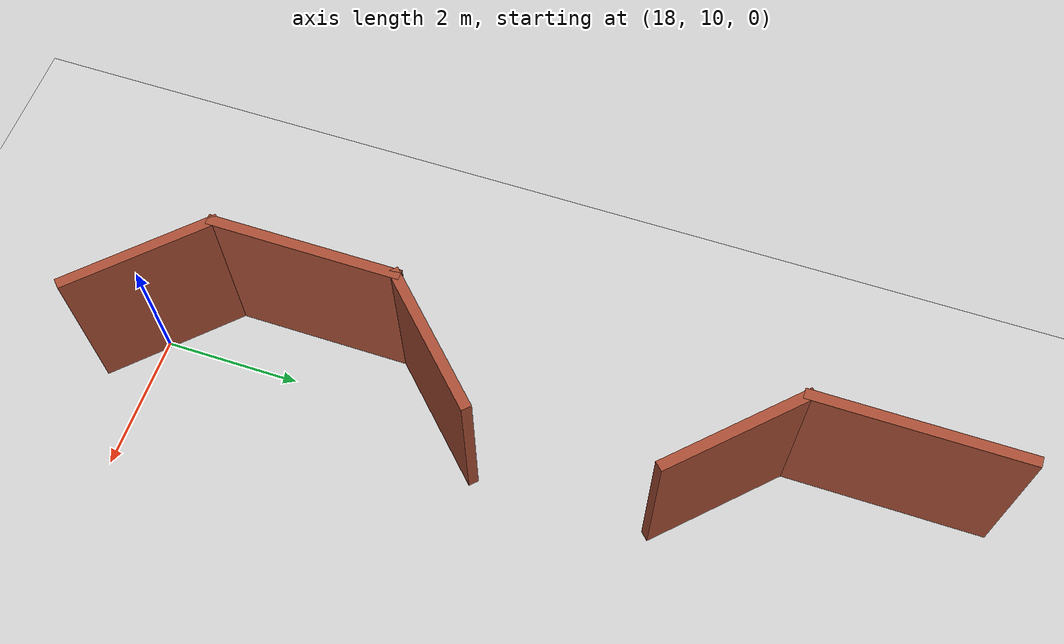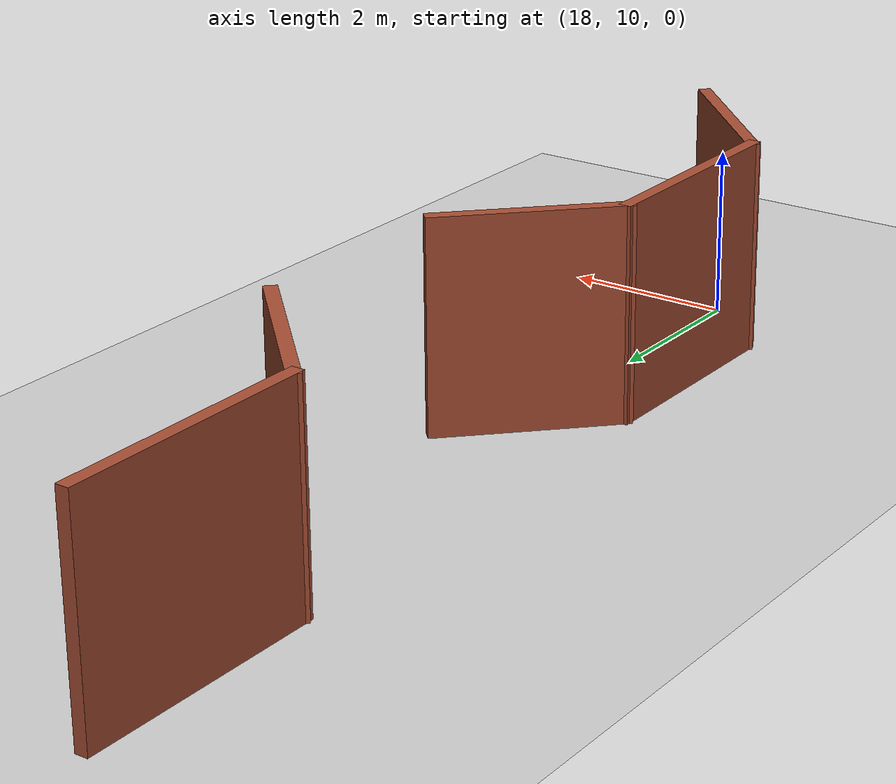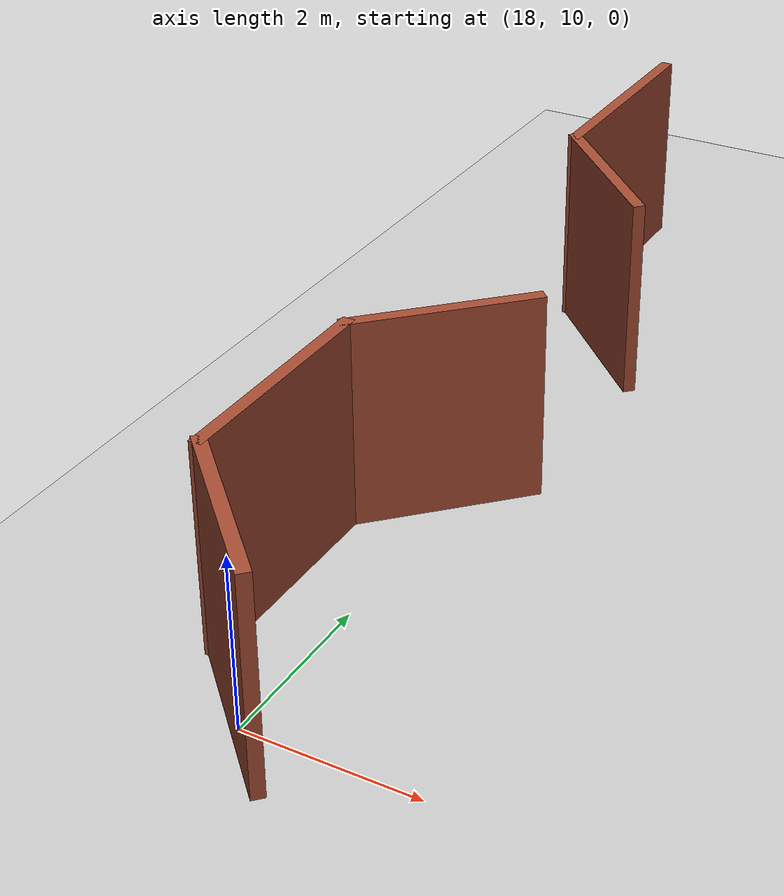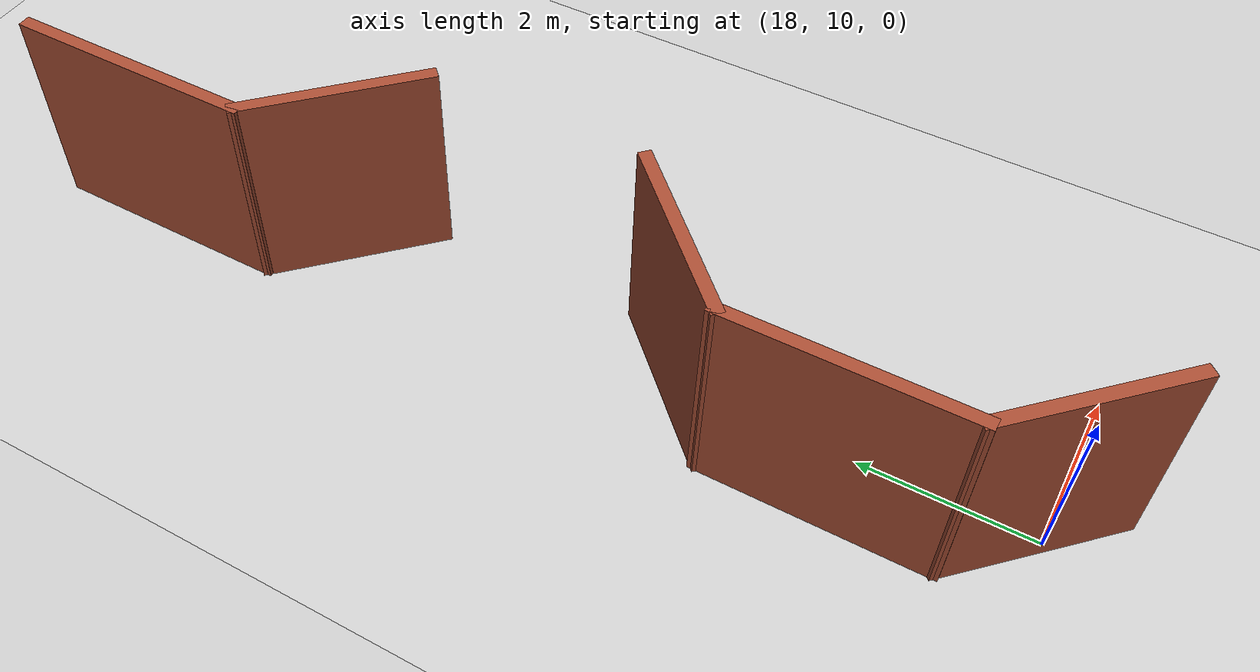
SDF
<sdf version="1.6">
 <world name="default">
  <model name="maze_rect_3">
   <pose>4e-06 -9.9e-05 0 0 -0 1.57001</pose>
   <link name="Wall_158">
    <collision name="Wall_158_Collision">
     <geometry><box><size>3 0.15 2.5</size></box></geometry>
     <pose>0 0 1.25 0 -0 0</pose>
    </collision>
    <visual name="Wall_158_Visual">
     <pose>0 0 1.25 0 -0 0</pose>
     <geometry><box><size>3 0.15 2.5</size></box></geometry>
     <material>
      <script><uri>file://media/materials/scripts/gazebo.material</uri><name>Gazebo/Bricks</name></script>
      <ambient>1 1 1 1</ambient>
     </material>
     <meta><layer>0</layer></meta>
    </visual>
    <pose>20.4527 -17.1394 0 0 -0 3.14159</pose>
   </link>
   <link name="Wall_159">
    <collision name="Wall_159_Collision">
     <geometry><box><size>2.25 0.15 2.5</size></box></geometry>
     <pose>0 0 1.25 0 -0 0</pose>
    </collision>
    <visual name="Wall_159_Visual">
     <pose>0 0 1.25 0 -0 0</pose>
     <geometry><box><size>2.25 0.15 2.5</size></box></geometry>
     <material>
      <script><uri>file://media/materials/scripts/gazebo.material</uri><name>Gazebo/Bricks</name></script>
      <ambient>1 1 1 1</ambient>
     </material>
     <meta><layer>0</layer></meta>
    </visual>
    <pose>18.2852 -17.8819 0 0 -0 -2.35619</pose>
   </link>
   <link name="Wall_161">
    <collision name="Wall_161_Collision">
     <geometry><box><size>2.25 0.15 2.5</size></box></geometry>
     <pose>0 0 1.25 0 -0 0</pose>
    </collision>
    <visual name="Wall_161_Visual">
     <pose>0 0 1.25 0 -0 0</pose>
     <geometry><box><size>2.25 0.15 2.5</size></box></geometry>
     <material>
      <script><uri>file://media/materials/scripts/gazebo.material</uri><name>Gazebo/Bricks</name></script>
      <ambient>1 1 1 1</ambient>
     </material>
     <meta><layer>0</layer></meta>
    </visual>
    <pose>14.2003 -17.8819 0 0 -0 2.35619</pose>
   </link>
   <link name="Wall_162">
    <collision name="Wall_162_Collision">
     <geometry><box><size>2.75 0.15 2.5</size></box></geometry>
     <pose>0 0 1.25 0 -0 0</pose>
    </collision>
    <visual name="Wall_162_Visual">
     <pose>0 0 1.25 0 -0 0</pose>
     <geometry><box><size>2.75 0.15 2.5</size></box></geometry>
     <material>
      <script><uri>file://media/materials/scripts/gazebo.material</uri><name>Gazebo/Bricks</name></script>
      <ambient>1 1 1 1</ambient>
     </material>
     <meta><layer>0</layer></meta>
    </visual>
    <pose>12.1578 -17.1394 0 0 -0 3.14159</pose>
   </link>
   <link name="Wall_163">
    <collision name="Wall_163_Collision">
     <geometry><box><size>2.25 0.15 2.5</size></box></geometry>
     <pose>0 0 1.25 0 -0 0</pose>
    </collision>
    <visual name="Wall_163_Visual">
     <pose>0 0 1.25 0 -0 0</pose>
     <geometry><box><size>2.25 0.15 2.5</size></box></geometry>
     <material>
      <script><uri>file://media/materials/scripts/gazebo.material</uri><name>Gazebo/Bricks</name></script>
      <ambient>1 1 1 1</ambient>
     </material>
     <meta><layer>0</layer></meta>
    </visual>
    <pose>10.1153 -17.8819 0 0 -0 -2.35619</pose>
   </link>
   <static>1</static>
  </model>
  <model name="ground_plane">
   <static>1</static>
   <link name="link">
    <collision name="collision">
     <geometry><plane><normal>0 0 1</normal><size>100 100</size></plane></geometry>
     <surface>
      <contact><collide_bitmask>65535</collide_bitmask></contact>
      <friction><ode><mu>100</mu><mu2>50</mu2></ode></friction>
     </surface>
    </collision>
    <visual name="visual">
     <cast_shadows>0</cast_shadows>
     <geometry><plane><normal>0 0 1</normal><size>100 100</size></plane></geometry>
     <material>
      <script><uri>file://media/materials/scripts/gazebo.material</uri><name>Gazebo/Grey</name></script>
     </material>
    </visual>
   </link>
   <pose>9.31394 52.073 0 0 -0 0</pose>
  </model>
 </world>
</sdf>
